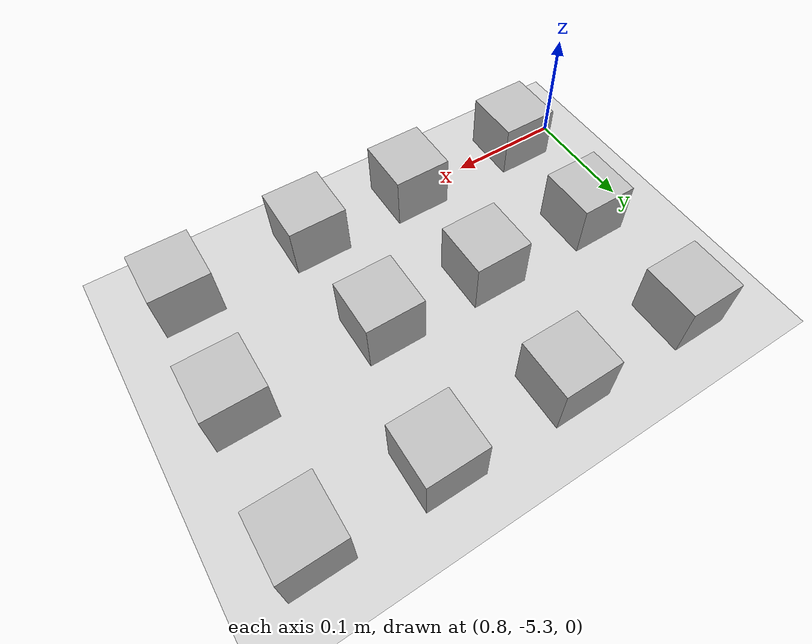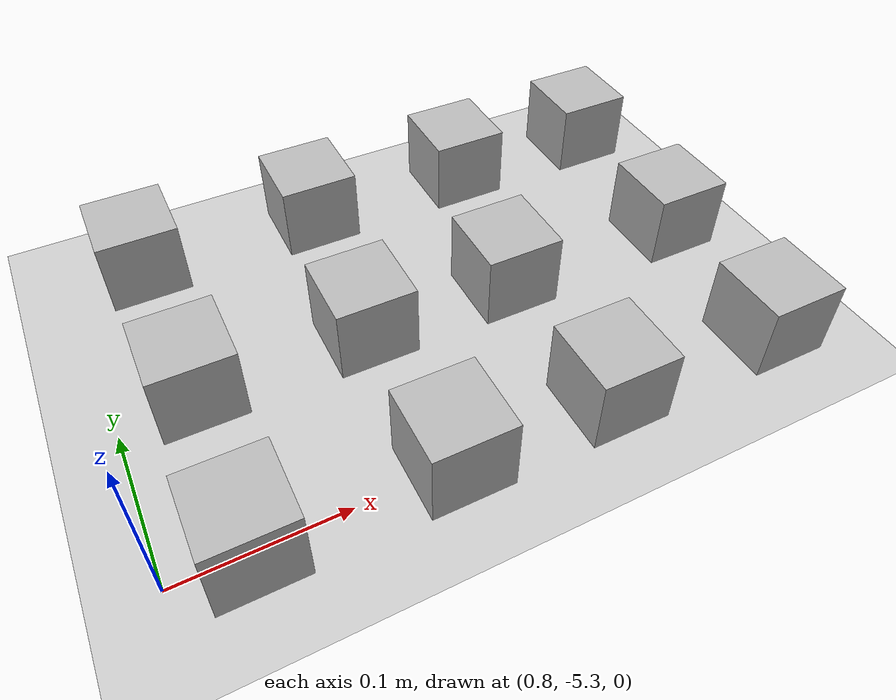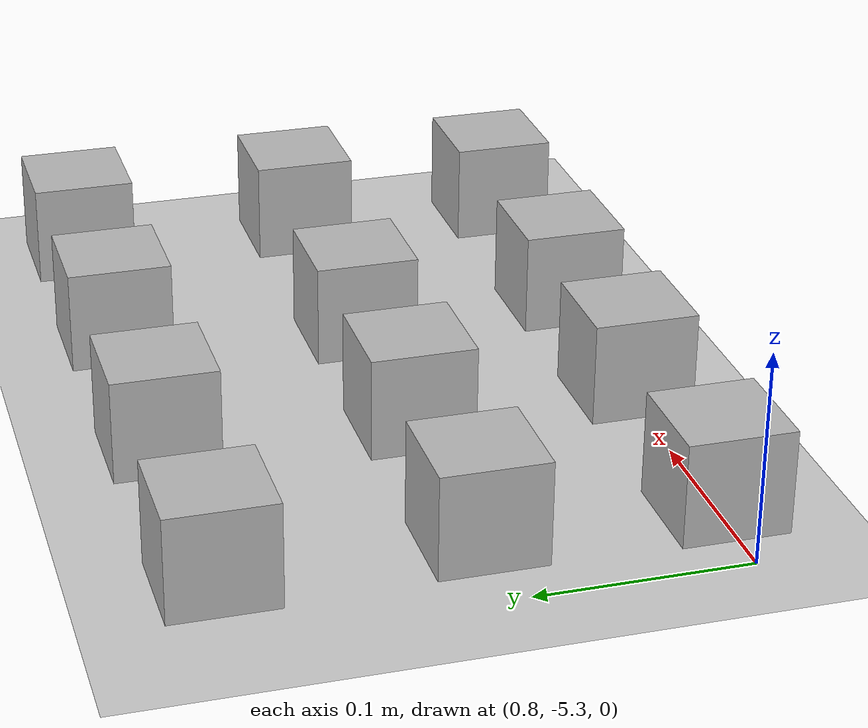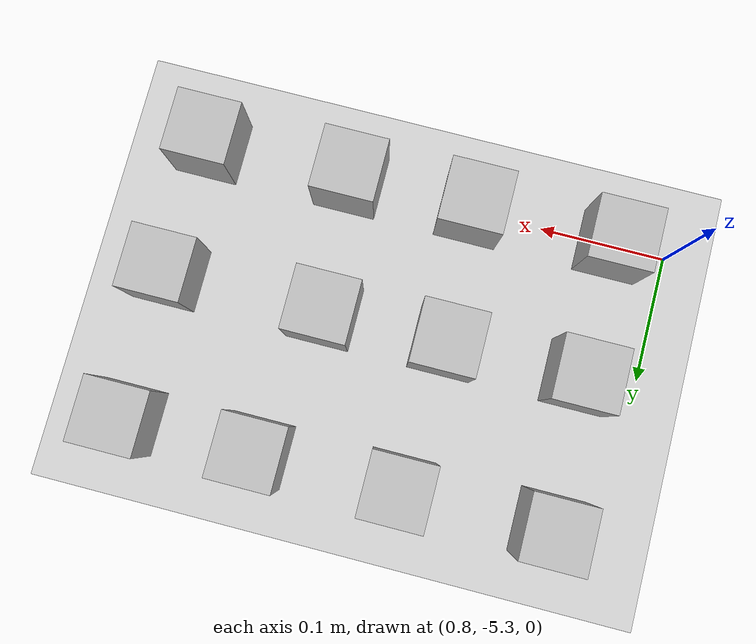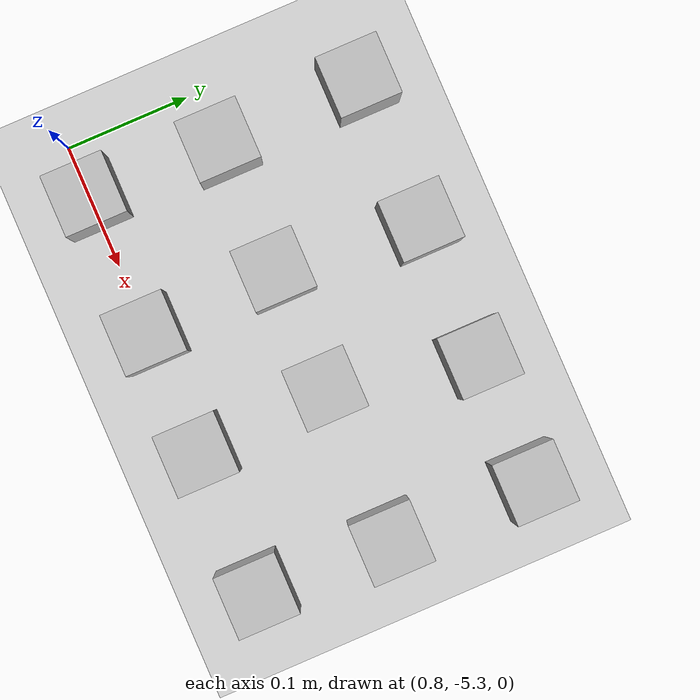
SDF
<sdf version="1.6">
 <world name="default">
  <model name="ground_plane">
   <static>1</static>
   <link name="link">
    <collision name="collision">
     <geometry><plane><normal>0 0 1</normal><size>100 100</size></plane></geometry>
     <surface><friction><ode><mu>100</mu><mu2>50</mu2></ode></friction></surface>
    </collision>
    <visual name="visual">
     <cast_shadows>0</cast_shadows>
     <geometry><plane><normal>0 0 1</normal><size>100 100</size></plane></geometry>
     <material>
      <script><uri>file://media/materials/scripts/gazebo.material</uri><name>Gazebo/Grey</name></script>
     </material>
    </visual>
   </link>
  </model>
  <model name="at68">
   <static>0</static>
   <link name="link">
    <inertial>
     <mass>0.01</mass>
     <inertia><ixx>4e-05</ixx><ixy>0</ixy><ixz>0</ixz><iyy>4e-05</iyy><iyz>0</iyz><izz>4e-05</izz></inertia>
    </inertial>
    <visual name="visual">
     <geometry><box><size>0.05 0.05 0.05</size></box></geometry>
     <material>
      <script>
       <uri>model://at0/materials/scripts</uri>
       <uri>model://at0/materials/textures</uri>
       <name>at0/Diffuse</name>
      </script>
     </material>
    </visual>
    <collision name="collision">
     <geometry><box><size>0.05 0.05 0.05</size></box></geometry>
     <surface><friction><ode><mu>0.8</mu><mu2>0.7</mu2></ode></friction></surface>
    </collision>
   </link>
   <pose>1.17178 -5.29925 0.025 0 -0 0</pose>
  </model>
  <model name="at69">
   <static>0</static>
   <link name="link">
    <inertial>
     <mass>0.01</mass>
     <inertia><ixx>4e-05</ixx><ixy>0</ixy><ixz>0</ixz><iyy>4e-05</iyy><iyz>0</iyz><izz>4e-05</izz></inertia>
    </inertial>
    <visual name="visual">
     <geometry><box><size>0.05 0.05 0.05</size></box></geometry>
     <material>
      <script>
       <uri>model://at0/materials/scripts</uri>
       <uri>model://at0/materials/textures</uri>
       <name>at0/Diffuse</name>
      </script>
     </material>
    </visual>
    <collision name="collision">
     <geometry><box><size>0.05 0.05 0.05</size></box></geometry>
     <surface><friction><ode><mu>0.8</mu><mu2>0.7</mu2></ode></friction></surface>
    </collision>
   </link>
   <pose>1.05684 -5.29925 0.025 0 -0 0</pose>
  </model>
  <model name="at70">
   <static>0</static>
   <link name="link">
    <inertial>
     <mass>0.01</mass>
     <inertia><ixx>4e-05</ixx><ixy>0</ixy><ixz>0</ixz><iyy>4e-05</iyy><iyz>0</iyz><izz>4e-05</izz></inertia>
    </inertial>
    <visual name="visual">
     <geometry><box><size>0.05 0.05 0.05</size></box></geometry>
     <material>
      <script>
       <uri>model://at0/materials/scripts</uri>
       <uri>model://at0/materials/textures</uri>
       <name>at0/Diffuse</name>
      </script>
     </material>
    </visual>
    <collision name="collision">
     <geometry><box><size>0.05 0.05 0.05</size></box></geometry>
     <surface><friction><ode><mu>0.8</mu><mu2>0.7</mu2></ode></friction></surface>
    </collision>
   </link>
   <pose>0.844045 -5.29925 0.025 0 -0 0</pose>
  </model>
  <model name="at71">
   <static>0</static>
   <link name="link">
    <inertial>
     <mass>0.01</mass>
     <inertia><ixx>4e-05</ixx><ixy>0</ixy><ixz>0</ixz><iyy>4e-05</iyy><iyz>0</iyz><izz>4e-05</izz></inertia>
    </inertial>
    <visual name="visual">
     <geometry><box><size>0.05 0.05 0.05</size></box></geometry>
     <material>
      <script>
       <uri>model://at0/materials/scripts</uri>
       <uri>model://at0/materials/textures</uri>
       <name>at0/Diffuse</name>
      </script>
     </material>
    </visual>
    <collision name="collision">
     <geometry><box><size>0.05 0.05 0.05</size></box></geometry>
     <surface><friction><ode><mu>0.8</mu><mu2>0.7</mu2></ode></friction></surface>
    </collision>
   </link>
   <pose>0.957758 -5.29925 0.025 0 -0 0</pose>
  </model>
  <model name="at72">
   <static>0</static>
   <link name="link">
    <inertial>
     <mass>0.01</mass>
     <inertia><ixx>4e-05</ixx><ixy>0</ixy><ixz>0</ixz><iyy>4e-05</iyy><iyz>0</iyz><izz>4e-05</izz></inertia>
    </inertial>
    <visual name="visual">
     <geometry><box><size>0.05 0.05 0.05</size></box></geometry>
     <material>
      <script>
       <uri>model://at0/materials/scripts</uri>
       <uri>model://at0/materials/textures</uri>
       <name>at0/Diffuse</name>
      </script>
     </material>
    </visual>
    <collision name="collision">
     <geometry><box><size>0.05 0.05 0.05</size></box></geometry>
     <surface><friction><ode><mu>0.8</mu><mu2>0.7</mu2></ode></friction></surface>
    </collision>
   </link>
   <pose>1.17571 -5.19092 0.025 0 -0 0</pose>
  </model>
  <model name="at73">
   <static>0</static>
   <link name="link">
    <inertial>
     <mass>0.01</mass>
     <inertia><ixx>4e-05</ixx><ixy>0</ixy><ixz>0</ixz><iyy>4e-05</iyy><iyz>0</iyz><izz>4e-05</izz></inertia>
    </inertial>
    <visual name="visual">
     <geometry><box><size>0.05 0.05 0.05</size></box></geometry>
     <material>
      <script>
       <uri>model://at0/materials/scripts</uri>
       <uri>model://at0/materials/textures</uri>
       <name>at0/Diffuse</name>
      </script>
     </material>
    </visual>
    <collision name="collision">
     <geometry><box><size>0.05 0.05 0.05</size></box></geometry>
     <surface><friction><ode><mu>0.8</mu><mu2>0.7</mu2></ode></friction></surface>
    </collision>
   </link>
   <pose>1.04982 -5.19092 0.025 0 -0 0</pose>
  </model>
  <model name="at74">
   <static>0</static>
   <link name="link">
    <inertial>
     <mass>0.01</mass>
     <inertia><ixx>4e-05</ixx><ixy>0</ixy><ixz>0</ixz><iyy>4e-05</iyy><iyz>0</iyz><izz>4e-05</izz></inertia>
    </inertial>
    <visual name="visual">
     <geometry><box><size>0.05 0.05 0.05</size></box></geometry>
     <material>
      <script>
       <uri>model://at0/materials/scripts</uri>
       <uri>model://at0/materials/textures</uri>
       <name>at0/Diffuse</name>
      </script>
     </material>
    </visual>
    <collision name="collision">
     <geometry><box><size>0.05 0.05 0.05</size></box></geometry>
     <surface><friction><ode><mu>0.8</mu><mu2>0.7</mu2></ode></friction></surface>
    </collision>
   </link>
   <pose>0.846467 -5.19092 0.025 0 -0 0</pose>
  </model>
  <model name="at75">
   <static>0</static>
   <link name="link">
    <inertial>
     <mass>0.01</mass>
     <inertia><ixx>4e-05</ixx><ixy>0</ixy><ixz>0</ixz><iyy>4e-05</iyy><iyz>0</iyz><izz>4e-05</izz></inertia>
    </inertial>
    <visual name="visual">
     <geometry><box><size>0.05 0.05 0.05</size></box></geometry>
     <material>
      <script>
       <uri>model://at0/materials/scripts</uri>
       <uri>model://at0/materials/textures</uri>
       <name>at0/Diffuse</name>
      </script>
     </material>
    </visual>
    <collision name="collision">
     <geometry><box><size>0.05 0.05 0.05</size></box></geometry>
     <surface><friction><ode><mu>0.8</mu><mu2>0.7</mu2></ode></friction></surface>
    </collision>
   </link>
   <pose>0.952294 -5.19092 0.025 0 -0 0</pose>
  </model>
  <model name="at76">
   <static>0</static>
   <link name="link">
    <inertial>
     <mass>0.01</mass>
     <inertia><ixx>4e-05</ixx><ixy>0</ixy><ixz>0</ixz><iyy>4e-05</iyy><iyz>0</iyz><izz>4e-05</izz></inertia>
    </inertial>
    <visual name="visual">
     <geometry><box><size>0.05 0.05 0.05</size></box></geometry>
     <material>
      <script>
       <uri>model://at0/materials/scripts</uri>
       <uri>model://at0/materials/textures</uri>
       <name>at0/Diffuse</name>
      </script>
     </material>
    </visual>
    <collision name="collision">
     <geometry><box><size>0.05 0.05 0.05</size></box></geometry>
     <surface><friction><ode><mu>0.8</mu><mu2>0.7</mu2></ode></friction></surface>
    </collision>
   </link>
   <pose>1.17694 -5.07446 0.025 0 -0 0</pose>
  </model>
  <model name="at77">
   <static>0</static>
   <link name="link">
    <inertial>
     <mass>0.01</mass>
     <inertia><ixx>4e-05</ixx><ixy>0</ixy><ixz>0</ixz><iyy>4e-05</iyy><iyz>0</iyz><izz>4e-05</izz></inertia>
    </inertial>
    <visual name="visual">
     <geometry><box><size>0.05 0.05 0.05</size></box></geometry>
     <material>
      <script>
       <uri>model://at0/materials/scripts</uri>
       <uri>model://at0/materials/textures</uri>
       <name>at0/Diffuse</name>
      </script>
     </material>
    </visual>
    <collision name="collision">
     <geometry><box><size>0.05 0.05 0.05</size></box></geometry>
     <surface><friction><ode><mu>0.8</mu><mu2>0.7</mu2></ode></friction></surface>
    </collision>
   </link>
   <pose>1.07386 -5.07446 0.025 0 -0 0</pose>
  </model>
  <model name="at78">
   <static>0</static>
   <link name="link">
    <inertial>
     <mass>0.01</mass>
     <inertia><ixx>4e-05</ixx><ixy>0</ixy><ixz>0</ixz><iyy>4e-05</iyy><iyz>0</iyz><izz>4e-05</izz></inertia>
    </inertial>
    <visual name="visual">
     <geometry><box><size>0.05 0.05 0.05</size></box></geometry>
     <material>
      <script>
       <uri>model://at0/materials/scripts</uri>
       <uri>model://at0/materials/textures</uri>
       <name>at0/Diffuse</name>
      </script>
     </material>
    </visual>
    <collision name="collision">
     <geometry><box><size>0.05 0.05 0.05</size></box></geometry>
     <surface><friction><ode><mu>0.8</mu><mu2>0.7</mu2></ode></friction></surface>
    </collision>
   </link>
   <pose>0.843832 -5.07446 0.024998 -3.7e-05 -2.6e-05 -5e-06</pose>
  </model>
  <model name="at79">
   <static>0</static>
   <link name="link">
    <inertial>
     <mass>0.01</mass>
     <inertia><ixx>4e-05</ixx><ixy>0</ixy><ixz>0</ixz><iyy>4e-05</iyy><iyz>0</iyz><izz>4e-05</izz></inertia>
    </inertial>
    <visual name="visual">
     <geometry><box><size>0.05 0.05 0.05</size></box></geometry>
     <material>
      <script>
       <uri>model://at0/materials/scripts</uri>
       <uri>model://at0/materials/textures</uri>
       <name>at0/Diffuse</name>
      </script>
     </material>
    </visual>
    <collision name="collision">
     <geometry><box><size>0.05 0.05 0.05</size></box></geometry>
     <surface><friction><ode><mu>0.8</mu><mu2>0.7</mu2></ode></friction></surface>
    </collision>
   </link>
   <pose>0.961993 -5.07446 0.024999 -1.2e-05 -2e-05 -6e-06</pose>
  </model>
 </world>
</sdf>
